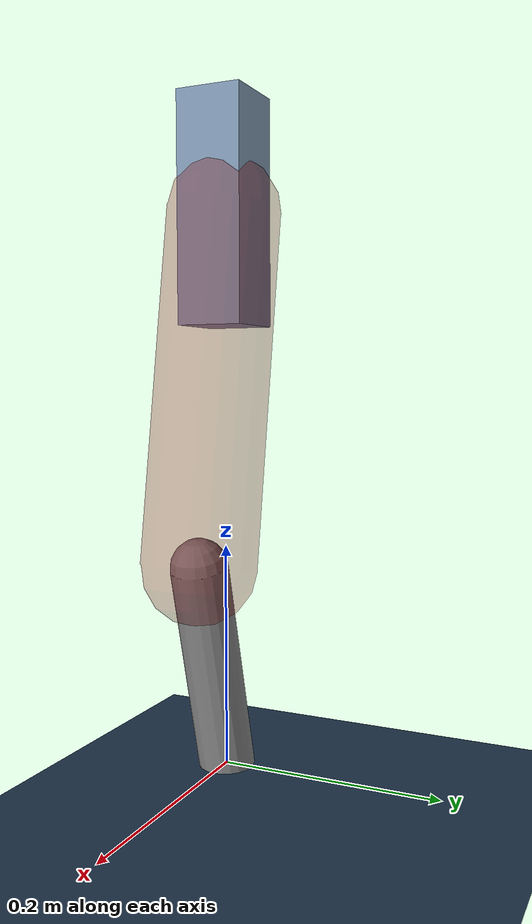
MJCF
<mujoco model="Hopper2D">
	<compiler inertiafromgeom="true" angle="radian" />
	<option timestep="0.001" integrator="implicit" cone="elliptic" solver="Newton" tolerance="1e-10" />

	<default>
		<geom contype="1" conaffinity="1" condim="3" friction="2 0.005 0.0001" solref="0.005 1" />
		<joint limited="true" damping="0.1" />
	</default>

	<asset>
		<texture name="skybox" type="skybox" builtin="gradient" rgb1=".4 .6 .8" rgb2="0 0 0" width="800" height="800" />
		<texture name="grid" type="2d" builtin="checker" rgb1=".1 .2 .3" rgb2=".2 .3 .4" width="300" height="300" mark="edge" markrgb=".2 .3 .4" />
		<material name="ground" texture="grid" texrepeat="1 1" texuniform="true" reflectance="0.1" />
		<material name="leg" rgba="0.5 0.6 0.7 1" />
	</asset>

	<worldbody>

		<geom name="floor" type="plane" size="5 5 0.25" material="ground" />

		<light directional="false" diffuse="0.8 0.8 0.8" specular="0.3 0.3 0.3" pos="0 0 2" dir="0 0 -1" />
		<light mode="targetbodycom" target="base" directional="false" diffuse="0.8 0.8 0.8" specular="0.3 0.3 0.3" pos="0 0 2" dir="0 0 -1" />

		<camera name="fixed" pos="0 -2 1" xyaxes="1 0 0 0 0 1" />
		<camera name="tracking" mode="trackcom" pos="0 -3 1" />

		<body name="root" pos="0 0 0.49578469709671136">
			<joint name="slide_x" type="slide" axis="1 0 0" range="-100 100" />
			<joint name="slide_z" type="slide" axis="0 0 1" range="0 10" />

			<body name="base" pos="0 0 0">
				<geom name="torso" type="box" size="0.03 0.03 0.1" mass="2.386" material="leg" />

				<body name="link1" pos="0 0 0" euler="0 1.4134659192981216 0">
					<joint type="hinge" axis="0 -1 0" pos="0 0 0" name="hinge1" limited="true" range="-3.14 3.14" stiffness="0" damping="0.1" />
					<geom name="thigh" type="capsule" fromto="0 0 0 0.31059502450147314 0 0" size="0.05" rgba="0.5 0 0 0.3" mass="1.0175065661539775" />

					<body name="link2" pos="0.31059502450147314 0 0" euler="0 0.4093084584064202 0">
						<joint type="hinge" axis="0 -1 0" pos="0 0 0" name="hinge2" limited="true" range="-3.14 3.14" stiffness="0" damping="0.1" />
						<geom name="shank" type="capsule" fromto="0 0 0 0.1951896725952382 0 0" size="0.025" mass="0.39685173807619056" />

					</body>
				</body>
			</body>
		</body>
	</worldbody>

	<actuator>
		<motor name="torque1" joint="hinge1" ctrlrange="-75.2454905523358 75.2454905523358" ctrllimited="true" gear="1" />
		<motor name="torque2" joint="hinge2" ctrlrange="-92.98875731538692 92.98875731538692" ctrllimited="true" gear="1" />
	</actuator>
</mujoco>
